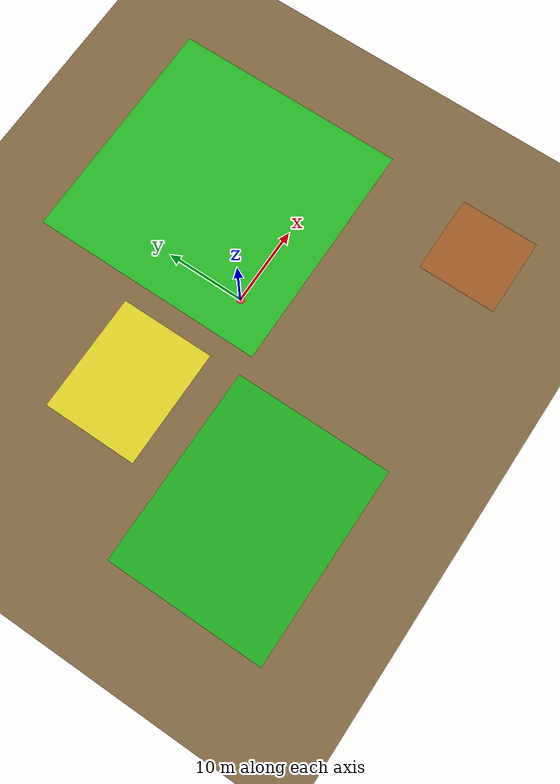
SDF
<?xml version="1.0" ?>
<sdf version="1.9">
  <world name="farmland">

    <!-- Physics -->
    <physics name="1ms" type="ignored">
      <max_step_size>0.001</max_step_size>
      <real_time_factor>1.0</real_time_factor>
    </physics>

    <!-- Plugins -->
    <plugin filename="gz-sim-physics-system" name="gz::sim::systems::Physics"/>
    <plugin filename="gz-sim-scene-broadcaster-system" name="gz::sim::systems::SceneBroadcaster"/>
    <plugin filename="gz-sim-user-commands-system" name="gz::sim::systems::UserCommands"/>
    <plugin filename="gz-sim-sensors-system" name="gz::sim::systems::Sensors">
      <render_engine>ogre2</render_engine>
    </plugin>
    <plugin filename="gz-sim-imu-system" name="gz::sim::systems::Imu"/>
    <plugin filename="gz-sim-navsat-system" name="gz::sim::systems::NavSat"/>

    <!-- Lighting -->
    <light type="directional" name="sun">
      <cast_shadows>true</cast_shadows>
      <pose>0 0 100 0 0 0</pose>
      <diffuse>0.9 0.9 0.85 1</diffuse>
      <specular>0.3 0.3 0.3 1</specular>
      <direction>-0.5 0.1 -0.9</direction>
    </light>

    <!-- Ground plane -->
    <model name="ground_plane">
      <static>true</static>
      <link name="link">
        <collision name="collision">
          <geometry>
            <plane>
              <normal>0 0 1</normal>
              <size>200 200</size>
            </plane>
          </geometry>
        </collision>
        <visual name="visual">
          <geometry>
            <plane>
              <normal>0 0 1</normal>
              <size>200 200</size>
            </plane>
          </geometry>
          <material>
            <ambient>0.45 0.35 0.2 1</ambient>
            <diffuse>0.5 0.4 0.25 1</diffuse>
          </material>
        </visual>
      </link>
    </model>

    <!-- Healthy crop zone (large green patch) -->
    <model name="healthy_zone_1">
      <static>true</static>
      <pose>10 10 0.01 0 0 0</pose>
      <link name="link">
        <visual name="visual">
          <geometry>
            <box><size>30 30 0.01</size></box>
          </geometry>
          <material>
            <ambient>0.1 0.6 0.1 1</ambient>
            <diffuse>0.15 0.7 0.15 1</diffuse>
          </material>
        </visual>
      </link>
    </model>

    <!-- Moderate stress zone (yellow patch) -->
    <model name="moderate_stress_zone">
      <static>true</static>
      <pose>-15 5 0.01 0 0 0</pose>
      <link name="link">
        <visual name="visual">
          <geometry>
            <box><size>15 12 0.01</size></box>
          </geometry>
          <material>
            <ambient>0.7 0.65 0.1 1</ambient>
            <diffuse>0.85 0.8 0.15 1</diffuse>
          </material>
        </visual>
      </link>
    </model>

    <!-- Severe stress zone (brown/bare patch) -->
    <model name="severe_stress_zone">
      <static>true</static>
      <pose>20 -20 0.01 0 0 0</pose>
      <link name="link">
        <visual name="visual">
          <geometry>
            <box><size>10 10 0.01</size></box>
          </geometry>
          <material>
            <ambient>0.5 0.3 0.1 1</ambient>
            <diffuse>0.6 0.35 0.15 1</diffuse>
          </material>
        </visual>
      </link>
    </model>

    <!-- Healthy crop zone 2 -->
    <model name="healthy_zone_2">
      <static>true</static>
      <pose>-20 -15 0.01 0 0 0</pose>
      <link name="link">
        <visual name="visual">
          <geometry>
            <box><size>25 20 0.01</size></box>
          </geometry>
          <material>
            <ambient>0.08 0.55 0.08 1</ambient>
            <diffuse>0.12 0.65 0.12 1</diffuse>
          </material>
        </visual>
      </link>
    </model>

    <!-- Drone spawn pose (takeoff point) -->
    <model name="spawn_marker">
      <static>true</static>
      <pose>0 0 0.05 0 0 0</pose>
      <link name="link">
        <visual name="visual">
          <geometry>
            <cylinder>
              <radius>0.5</radius>
              <length>0.05</length>
            </cylinder>
          </geometry>
          <material>
            <ambient>0.9 0.1 0.1 1</ambient>
            <diffuse>1.0 0.2 0.2 1</diffuse>
          </material>
        </visual>
      </link>
    </model>

  </world>
</sdf>
